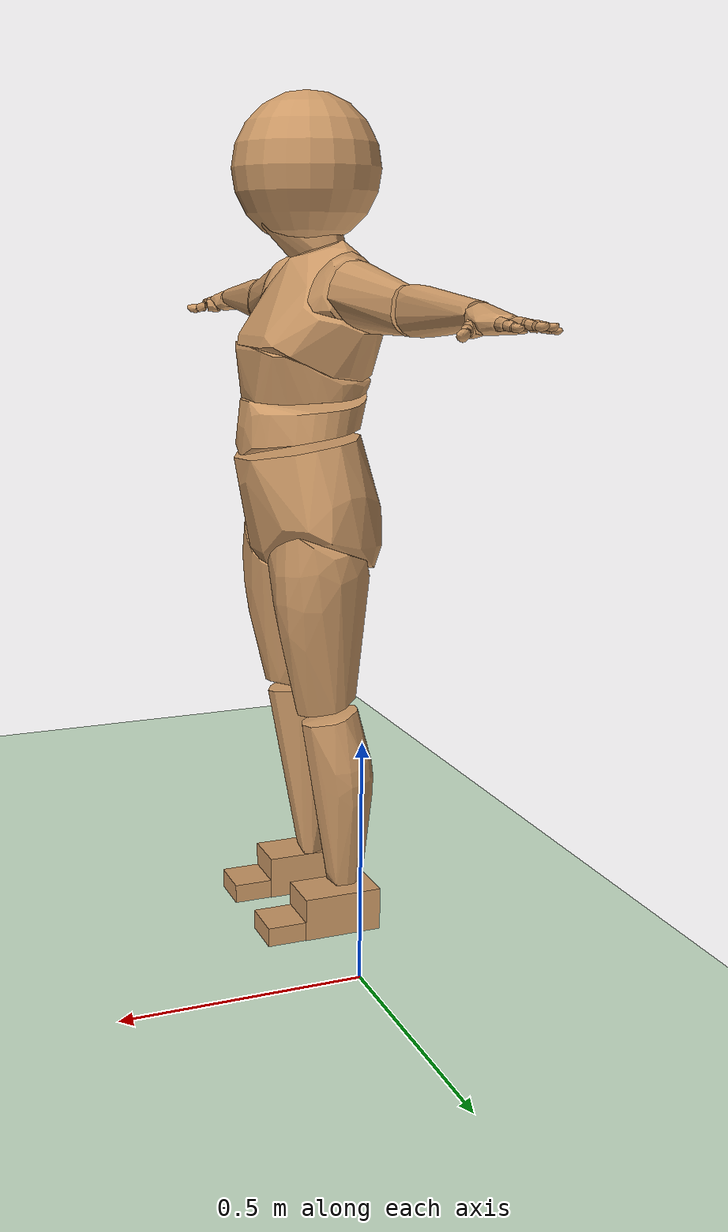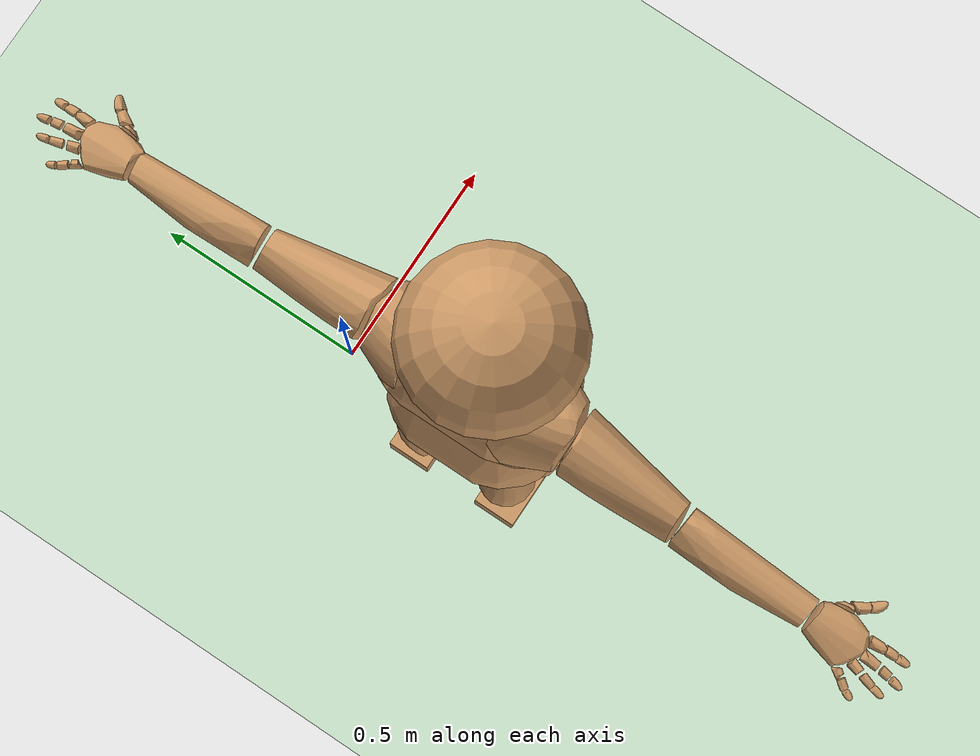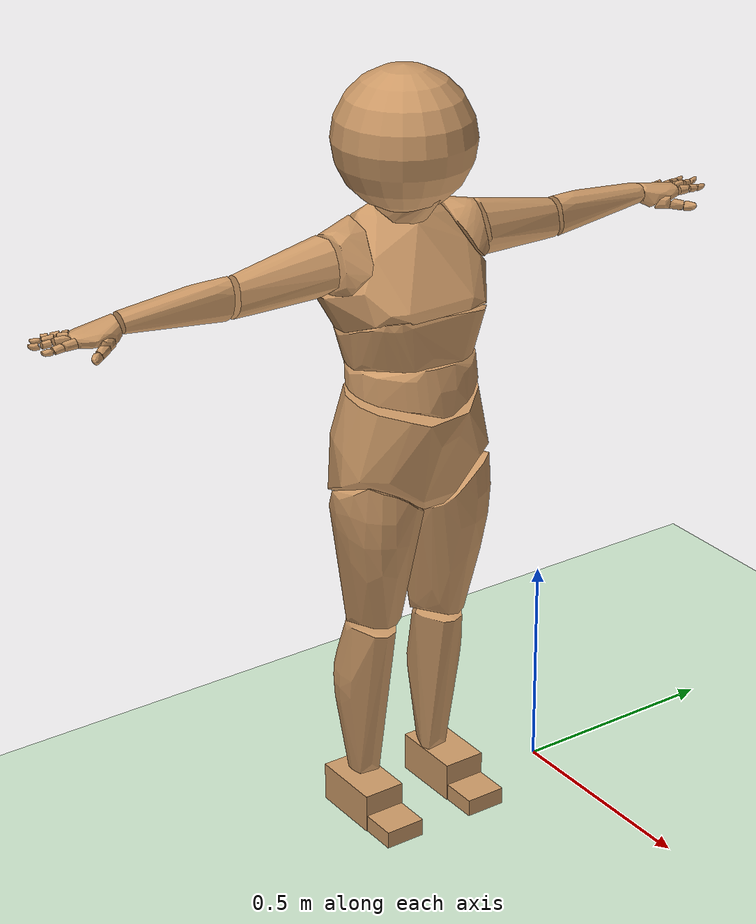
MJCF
<mujoco model="humanoid">
  <compiler coordinate="local" angle="radian" balanceinertia="true"/>
  <option timestep="0.001" iterations="100" tolerance="1e-8" integrator="implicitfast"/>
  <default>
    <motor ctrlrange="-1 1" ctrllimited="true"/>
    <joint limited="true" solimplimit="0 .99 .01"/>
    <geom condim="3" friction="1 0.05 0.05" solimp=".9 .99 .01" solref=".02 1" margin="0.004" contype="1" conaffinity="1" rgba="0.8 0.6 .4 1"/>
  </default>
  <asset>
    <texture type="skybox" builtin="gradient" rgb1=".4 .5 .6" rgb2="0 0 0" width="100" height="100"/>
    <texture builtin="flat" height="1278" mark="cross" markrgb="1 1 1" name="texgeom" random="0.01" rgb1="0.8 0.6 0.4" rgb2="0.8 0.6 0.4" type="cube" width="127"/>
    <texture name="texplane" type="2d" builtin="checker" rgb1=".2 .3 .4" rgb2=".1 0.15 0.2" width="100" height="100"/><material name="MatPlane" reflectance="0.5" texture="texplane" texrepeat="1 1" texuniform="true"/><material name="geom" texture="texgeom" texuniform="true"/>
    <mesh file="725669fe-0b05-464b-a3ef-25dd03fd9762/geom/Pelvis.stl" name="Pelvis_mesh"/>
    <mesh file="725669fe-0b05-464b-a3ef-25dd03fd9762/geom/L_Hip.stl" name="L_Hip_mesh"/>
    <mesh file="725669fe-0b05-464b-a3ef-25dd03fd9762/geom/R_Hip.stl" name="R_Hip_mesh"/>
    <mesh file="725669fe-0b05-464b-a3ef-25dd03fd9762/geom/Torso.stl" name="Torso_mesh"/>
    <mesh file="725669fe-0b05-464b-a3ef-25dd03fd9762/geom/L_Knee.stl" name="L_Knee_mesh"/>
    <mesh file="725669fe-0b05-464b-a3ef-25dd03fd9762/geom/R_Knee.stl" name="R_Knee_mesh"/>
    <mesh file="725669fe-0b05-464b-a3ef-25dd03fd9762/geom/Spine.stl" name="Spine_mesh"/>
    <mesh file="725669fe-0b05-464b-a3ef-25dd03fd9762/geom/L_Ankle.stl" name="L_Ankle_mesh"/>
    <mesh file="725669fe-0b05-464b-a3ef-25dd03fd9762/geom/R_Ankle.stl" name="R_Ankle_mesh"/>
    <mesh file="725669fe-0b05-464b-a3ef-25dd03fd9762/geom/Chest.stl" name="Chest_mesh"/>
    <mesh file="725669fe-0b05-464b-a3ef-25dd03fd9762/geom/L_Toe.stl" name="L_Toe_mesh"/>
    <mesh file="725669fe-0b05-464b-a3ef-25dd03fd9762/geom/R_Toe.stl" name="R_Toe_mesh"/>
    <mesh file="725669fe-0b05-464b-a3ef-25dd03fd9762/geom/Neck.stl" name="Neck_mesh"/>
    <mesh file="725669fe-0b05-464b-a3ef-25dd03fd9762/geom/L_Thorax.stl" name="L_Thorax_mesh"/>
    <mesh file="725669fe-0b05-464b-a3ef-25dd03fd9762/geom/R_Thorax.stl" name="R_Thorax_mesh"/>
    <mesh file="725669fe-0b05-464b-a3ef-25dd03fd9762/geom/L_Shoulder.stl" name="L_Shoulder_mesh"/>
    <mesh file="725669fe-0b05-464b-a3ef-25dd03fd9762/geom/R_Shoulder.stl" name="R_Shoulder_mesh"/>
    <mesh file="725669fe-0b05-464b-a3ef-25dd03fd9762/geom/L_Elbow.stl" name="L_Elbow_mesh"/>
    <mesh file="725669fe-0b05-464b-a3ef-25dd03fd9762/geom/R_Elbow.stl" name="R_Elbow_mesh"/>
    <mesh file="725669fe-0b05-464b-a3ef-25dd03fd9762/geom/L_Wrist.stl" name="L_Wrist_mesh"/>
    <mesh file="725669fe-0b05-464b-a3ef-25dd03fd9762/geom/R_Wrist.stl" name="R_Wrist_mesh"/>
    <mesh file="725669fe-0b05-464b-a3ef-25dd03fd9762/geom/L_Index1.stl" name="L_Index1_mesh"/>
    <mesh file="725669fe-0b05-464b-a3ef-25dd03fd9762/geom/L_Index2.stl" name="L_Index2_mesh"/>
    <mesh file="725669fe-0b05-464b-a3ef-25dd03fd9762/geom/L_Index3.stl" name="L_Index3_mesh"/>
    <mesh file="725669fe-0b05-464b-a3ef-25dd03fd9762/geom/L_Middle1.stl" name="L_Middle1_mesh"/>
    <mesh file="725669fe-0b05-464b-a3ef-25dd03fd9762/geom/L_Middle2.stl" name="L_Middle2_mesh"/>
    <mesh file="725669fe-0b05-464b-a3ef-25dd03fd9762/geom/L_Middle3.stl" name="L_Middle3_mesh"/>
    <mesh file="725669fe-0b05-464b-a3ef-25dd03fd9762/geom/L_Pinky1.stl" name="L_Pinky1_mesh"/>
    <mesh file="725669fe-0b05-464b-a3ef-25dd03fd9762/geom/L_Pinky2.stl" name="L_Pinky2_mesh"/>
    <mesh file="725669fe-0b05-464b-a3ef-25dd03fd9762/geom/L_Pinky3.stl" name="L_Pinky3_mesh"/>
    <mesh file="725669fe-0b05-464b-a3ef-25dd03fd9762/geom/L_Ring1.stl" name="L_Ring1_mesh"/>
    <mesh file="725669fe-0b05-464b-a3ef-25dd03fd9762/geom/L_Ring2.stl" name="L_Ring2_mesh"/>
    <mesh file="725669fe-0b05-464b-a3ef-25dd03fd9762/geom/L_Ring3.stl" name="L_Ring3_mesh"/>
    <mesh file="725669fe-0b05-464b-a3ef-25dd03fd9762/geom/L_Thumb1.stl" name="L_Thumb1_mesh"/>
    <mesh file="725669fe-0b05-464b-a3ef-25dd03fd9762/geom/L_Thumb2.stl" name="L_Thumb2_mesh"/>
    <mesh file="725669fe-0b05-464b-a3ef-25dd03fd9762/geom/L_Thumb3.stl" name="L_Thumb3_mesh"/>
    <mesh file="725669fe-0b05-464b-a3ef-25dd03fd9762/geom/R_Index1.stl" name="R_Index1_mesh"/>
    <mesh file="725669fe-0b05-464b-a3ef-25dd03fd9762/geom/R_Index2.stl" name="R_Index2_mesh"/>
    <mesh file="725669fe-0b05-464b-a3ef-25dd03fd9762/geom/R_Index3.stl" name="R_Index3_mesh"/>
    <mesh file="725669fe-0b05-464b-a3ef-25dd03fd9762/geom/R_Middle1.stl" name="R_Middle1_mesh"/>
    <mesh file="725669fe-0b05-464b-a3ef-25dd03fd9762/geom/R_Middle2.stl" name="R_Middle2_mesh"/>
    <mesh file="725669fe-0b05-464b-a3ef-25dd03fd9762/geom/R_Middle3.stl" name="R_Middle3_mesh"/>
    <mesh file="725669fe-0b05-464b-a3ef-25dd03fd9762/geom/R_Pinky1.stl" name="R_Pinky1_mesh"/>
    <mesh file="725669fe-0b05-464b-a3ef-25dd03fd9762/geom/R_Pinky2.stl" name="R_Pinky2_mesh"/>
    <mesh file="725669fe-0b05-464b-a3ef-25dd03fd9762/geom/R_Pinky3.stl" name="R_Pinky3_mesh"/>
    <mesh file="725669fe-0b05-464b-a3ef-25dd03fd9762/geom/R_Ring1.stl" name="R_Ring1_mesh"/>
    <mesh file="725669fe-0b05-464b-a3ef-25dd03fd9762/geom/R_Ring2.stl" name="R_Ring2_mesh"/>
    <mesh file="725669fe-0b05-464b-a3ef-25dd03fd9762/geom/R_Ring3.stl" name="R_Ring3_mesh"/>
    <mesh file="725669fe-0b05-464b-a3ef-25dd03fd9762/geom/R_Thumb1.stl" name="R_Thumb1_mesh"/>
    <mesh file="725669fe-0b05-464b-a3ef-25dd03fd9762/geom/R_Thumb2.stl" name="R_Thumb2_mesh"/>
    <mesh file="725669fe-0b05-464b-a3ef-25dd03fd9762/geom/R_Thumb3.stl" name="R_Thumb3_mesh"/>
  </asset>
  <worldbody>
    <light name="tracking_light" pos="0 0 7" dir="0 0 -1" directional="true" cutoff="100" exponent="1" diffuse="1 1 1" specular="0.1 0.1 0.1" mode="trackcom"/><camera name="back" pos="0 3 2.4" xyaxes="-1 0 0 0 -1 2" mode="trackcom"/><camera name="side" pos="-3 0 2.4" xyaxes="0 -1 0 1 0 2" mode="trackcom"/><camera name="front_side" pos="-2 -2 .8" xyaxes="0.5 -0.5 0 0.1 0.1 1" mode="trackcom"/><geom conaffinity="1" condim="3" name="floor" pos="0 0 0" friction="1 0.05 0.05" solimp=".9 .99 .01" solref=".02 1" rgba="0.8 0.9 0.8 1" size="100 100 .2" type="plane" material="MatPlane"/>
    <body name="Pelvis" pos="0.0031 -0.3514 0.947">
      <freejoint name="Pelvis"/>
      <geom type="mesh" mesh="Pelvis_mesh" density="1000" contype="1" conaffinity="1"/>
      <body name="L_Hip" pos="-0.026 0.0582 -0.0928">
        <joint name="L_Hip_x" type="hinge" pos="0 0 0" axis="1 0 0" actuatorfrcrange="-300 300" stiffness="0" damping="0" armature="0.02" range="-0.5236 1.5708"/>
        <joint name="L_Hip_y" type="hinge" pos="0 0 0" axis="0 1 0" actuatorfrcrange="-300 300" stiffness="0" damping="0" armature="0.02" range="-2.4435 1.0472"/>
        <joint name="L_Hip_z" type="hinge" pos="0 0 0" axis="0 0 1" actuatorfrcrange="-300 300" stiffness="0" damping="0" armature="0.02" range="-0.6109 1.0472"/>
        <geom type="mesh" mesh="L_Hip_mesh" density="1000" contype="1" conaffinity="1"/>
        <body name="L_Knee" pos="-0.0094 0.0547 -0.3788">
          <joint name="L_Knee_x" type="hinge" pos="0 0 0" axis="1 0 0" actuatorfrcrange="-200 200" stiffness="0" damping="0" armature="0.02" range="-0.5236 0.5236"/>
          <joint name="L_Knee_y" type="hinge" pos="0 0 0" axis="0 1 0" actuatorfrcrange="-200 200" stiffness="0" damping="0" armature="0.02" range="0 2.7925"/>
          <joint name="L_Knee_z" type="hinge" pos="0 0 0" axis="0 0 1" actuatorfrcrange="-200 200" stiffness="0" damping="0" armature="0.02" range="-0.5236 0.5236"/>
          <geom type="mesh" mesh="L_Knee_mesh" density="1000" contype="1" conaffinity="1"/>
          <body name="L_Ankle" pos="-0.0319 -0.0435 -0.4031">
            <joint name="L_Ankle_x" type="hinge" pos="0 0 0" axis="1 0 0" actuatorfrcrange="-100 100" stiffness="0" damping="0" armature="0.02" range="-0.5236 0.5236"/>
            <joint name="L_Ankle_y" type="hinge" pos="0 0 0" axis="0 1 0" actuatorfrcrange="-100 100" stiffness="0" damping="0" armature="0.02" range="-0.9599 0.9599"/>
            <joint name="L_Ankle_z" type="hinge" pos="0 0 0" axis="0 0 1" actuatorfrcrange="-100 100" stiffness="0" damping="0" armature="0.02" range="-0.6981 0.6981"/>
            <geom density="445.8198" type="box" pos="0.0232 0.0407 -0.0287" size="0.0857 0.0498 0.0463" quat="1.0000 0.0000 0.0000 0.0000"/>
            <body name="L_Toe" pos="0.1182 0.0473 -0.058">
              <joint name="L_Toe_x" type="hinge" pos="0 0 0" axis="1 0 0" actuatorfrcrange="-75 75" stiffness="0" damping="0" armature="0.02" range="-0.5236 0.5236"/>
              <joint name="L_Toe_y" type="hinge" pos="0 0 0" axis="0 1 0" actuatorfrcrange="-75 75" stiffness="0" damping="0" armature="0.02" range="-1.0472 1.0472"/>
              <joint name="L_Toe_z" type="hinge" pos="0 0 0" axis="0 0 1" actuatorfrcrange="-75 75" stiffness="0" damping="0" armature="0.02" range="-0.5236 0.5236"/>
              <geom density="421.76654" type="box" pos="0.0256 -0.0065 0.0034" size="0.0495 0.0478 0.0205" quat="1.0000 0.0000 0.0000 0.0000"/>
            </body>
          </body>
        </body>
      </body>
      <body name="R_Hip" pos="-0.0213 -0.0633 -0.1039">
        <joint name="R_Hip_x" type="hinge" pos="0 0 0" axis="1 0 0" actuatorfrcrange="-300 300" stiffness="0" damping="0" armature="0.02" range="-1.5708 0.5236"/>
        <joint name="R_Hip_y" type="hinge" pos="0 0 0" axis="0 1 0" actuatorfrcrange="-300 300" stiffness="0" damping="0" armature="0.02" range="-2.4435 1.0472"/>
        <joint name="R_Hip_z" type="hinge" pos="0 0 0" axis="0 0 1" actuatorfrcrange="-300 300" stiffness="0" damping="0" armature="0.02" range="-1.0472 0.6109"/>
        <geom type="mesh" mesh="R_Hip_mesh" density="1000" contype="1" conaffinity="1"/>
        <body name="R_Knee" pos="-0.0168 -0.0442 -0.3624">
          <joint name="R_Knee_x" type="hinge" pos="0 0 0" axis="1 0 0" actuatorfrcrange="-200 200" stiffness="0" damping="0" armature="0.02" range="-0.5236 0.5236"/>
          <joint name="R_Knee_y" type="hinge" pos="0 0 0" axis="0 1 0" actuatorfrcrange="-200 200" stiffness="0" damping="0" armature="0.02" range="0 2.7925"/>
          <joint name="R_Knee_z" type="hinge" pos="0 0 0" axis="0 0 1" actuatorfrcrange="-200 200" stiffness="0" damping="0" armature="0.02" range="-0.5236 0.5236"/>
          <geom type="mesh" mesh="R_Knee_mesh" density="1000" contype="1" conaffinity="1"/>
          <body name="R_Ankle" pos="-0.0202 0.0154 -0.4107">
            <joint name="R_Ankle_x" type="hinge" pos="0 0 0" axis="1 0 0" actuatorfrcrange="-100 100" stiffness="0" damping="0" armature="0.02" range="-0.5236 0.5236"/>
            <joint name="R_Ankle_y" type="hinge" pos="0 0 0" axis="0 1 0" actuatorfrcrange="-100 100" stiffness="0" damping="0" armature="0.02" range="-0.9599 0.9599"/>
            <joint name="R_Ankle_z" type="hinge" pos="0 0 0" axis="0 0 1" actuatorfrcrange="-100 100" stiffness="0" damping="0" armature="0.02" range="-0.6981 0.6981"/>
            <geom density="445.80768" type="box" pos="0.0142 -0.0243 -0.0263" size="0.0857 0.0498 0.0464" quat="1.0000 0.0000 0.0000 0.0000"/>
            <body name="R_Toe" pos="0.119 -0.0388 -0.0583">
              <joint name="R_Toe_x" type="hinge" pos="0 0 0" axis="1 0 0" actuatorfrcrange="-75 75" stiffness="0" damping="0" armature="0.02" range="-0.5236 0.5236"/>
              <joint name="R_Toe_y" type="hinge" pos="0 0 0" axis="0 1 0" actuatorfrcrange="-75 75" stiffness="0" damping="0" armature="0.02" range="-1.0472 1.0472"/>
              <joint name="R_Toe_z" type="hinge" pos="0 0 0" axis="0 0 1" actuatorfrcrange="-75 75" stiffness="0" damping="0" armature="0.02" range="-0.5236 0.5236"/>
              <geom density="421.76465" type="box" pos="0.0158 0.0145 0.0062" size="0.0495 0.0478 0.0205" quat="1.0000 0.0000 0.0000 0.0000"/>
            </body>
          </body>
        </body>
      </body>
      <body name="Torso" pos="-0.0276 -0.0028 0.1099">
        <joint name="Torso_x" type="hinge" pos="0 0 0" axis="1 0 0" actuatorfrcrange="-300 300" stiffness="0" damping="0" armature="0.02" range="-1.0472 1.0472"/>
        <joint name="Torso_y" type="hinge" pos="0 0 0" axis="0 1 0" actuatorfrcrange="-300 300" stiffness="0" damping="0" armature="0.02" range="-1.0472 1.5708"/>
        <joint name="Torso_z" type="hinge" pos="0 0 0" axis="0 0 1" actuatorfrcrange="-300 300" stiffness="0" damping="0" armature="0.02" range="-0.8727 0.8727"/>
        <geom type="mesh" mesh="Torso_mesh" density="1000" contype="1" conaffinity="1"/>
        <body name="Spine" pos="-0.0059 0.0094 0.1319">
          <joint name="Spine_x" type="hinge" pos="0 0 0" axis="1 0 0" actuatorfrcrange="-200 200" stiffness="0" damping="0" armature="0.02" range="-1.0472 1.0472"/>
          <joint name="Spine_y" type="hinge" pos="0 0 0" axis="0 1 0" actuatorfrcrange="-200 200" stiffness="0" damping="0" armature="0.02" range="-1.0472 1.5708"/>
          <joint name="Spine_z" type="hinge" pos="0 0 0" axis="0 0 1" actuatorfrcrange="-200 200" stiffness="0" damping="0" armature="0.02" range="-0.8727 0.8727"/>
          <geom type="mesh" mesh="Spine_mesh" density="1000" contype="1" conaffinity="1"/>
          <body name="Chest" pos="0.0284 -0.0113 0.0522">
            <joint name="Chest_x" type="hinge" pos="0 0 0" axis="1 0 0" actuatorfrcrange="-150 150" stiffness="0" damping="0" armature="0.02" range="-1.0472 1.0472"/>
            <joint name="Chest_y" type="hinge" pos="0 0 0" axis="0 1 0" actuatorfrcrange="-150 150" stiffness="0" damping="0" armature="0.02" range="-1.0472 1.5708"/>
            <joint name="Chest_z" type="hinge" pos="0 0 0" axis="0 0 1" actuatorfrcrange="-150 150" stiffness="0" damping="0" armature="0.02" range="-0.8727 0.8727"/>
            <geom type="mesh" mesh="Chest_mesh" density="1000" contype="1" conaffinity="1"/>
            <body name="Neck" pos="-0.0316 -0.0122 0.1652">
              <joint name="Neck_x" type="hinge" pos="0 0 0" axis="1 0 0" actuatorfrcrange="-75 75" stiffness="0" damping="0" armature="0.02" range="-0.8727 0.8727"/>
              <joint name="Neck_y" type="hinge" pos="0 0 0" axis="0 1 0" actuatorfrcrange="-75 75" stiffness="0" damping="0" armature="0.02" range="-0.6981 1.0472"/>
              <joint name="Neck_z" type="hinge" pos="0 0 0" axis="0 0 1" actuatorfrcrange="-75 75" stiffness="0" damping="0" armature="0.02" range="-0.7854 0.7854"/>
              <geom type="mesh" mesh="Neck_mesh" density="1000" contype="1" conaffinity="1"/>
              <body name="Head" pos="0.0207 0.0248 0.1605">
                <joint name="Head_x" type="hinge" pos="0 0 0" axis="1 0 0" actuatorfrcrange="-25 25" stiffness="0" damping="0" armature="0.02" range="-0.8727 0.8727"/>
                <joint name="Head_y" type="hinge" pos="0 0 0" axis="0 1 0" actuatorfrcrange="-25 25" stiffness="0" damping="0" armature="0.02" range="-0.6981 1.0472"/>
                <joint name="Head_z" type="hinge" pos="0 0 0" axis="0 0 1" actuatorfrcrange="-25 25" stiffness="0" damping="0" armature="0.02" range="-0.7854 0.7854"/>
                <geom type="sphere" density="1000" size="0.155" pos="-0.0056 -0.0202 0.0471" contype="1" conaffinity="1"/>
              </body>
            </body>
            <body name="L_Thorax" pos="-0.0072 0.0464 0.0849">
              <joint name="L_Thorax_x" type="hinge" pos="0 0 0" axis="1 0 0" actuatorfrcrange="-200 200" stiffness="0" damping="0" armature="0.02" range="-0.6981 0.5236"/>
              <joint name="L_Thorax_y" type="hinge" pos="0 0 0" axis="0 1 0" actuatorfrcrange="-200 200" stiffness="0" damping="0" armature="0.02" range="-0.5236 0.5236"/>
              <joint name="L_Thorax_z" type="hinge" pos="0 0 0" axis="0 0 1" actuatorfrcrange="-200 200" stiffness="0" damping="0" armature="0.02" range="-0.5236 0.5236"/>
              <geom type="mesh" mesh="L_Thorax_mesh" density="1000" contype="1" conaffinity="1"/>
              <body name="L_Shoulder" pos="-0.0155 0.1192 0.0577">
                <joint name="L_Shoulder_x" type="hinge" pos="0 0 0" axis="1 0 0" actuatorfrcrange="-150 150" stiffness="0" damping="0" armature="0.02" range="-2.3562 1.5708"/>
                <joint name="L_Shoulder_y" type="hinge" pos="0 0 0" axis="0 1 0" actuatorfrcrange="-150 150" stiffness="0" damping="0" armature="0.02" range="-1.5708 1.5708"/>
                <joint name="L_Shoulder_z" type="hinge" pos="0 0 0" axis="0 0 1" actuatorfrcrange="-150 150" stiffness="0" damping="0" armature="0.02" range="-2.7925 1.0472"/>
                <geom type="mesh" mesh="L_Shoulder_mesh" density="1000" contype="1" conaffinity="1"/>
                <body name="L_Elbow" pos="-0.0425 0.2541 -0.0722">
                  <joint name="L_Elbow_x" type="hinge" pos="0 0 0" axis="1 0 0" actuatorfrcrange="-100 100" stiffness="0" damping="0" armature="0.02" range="-0.5236 0.5236"/>
                  <joint name="L_Elbow_y" type="hinge" pos="0 0 0" axis="0 1 0" actuatorfrcrange="-100 100" stiffness="0" damping="0" armature="0.02" range="-0.5236 0.5236"/>
                  <joint name="L_Elbow_z" type="hinge" pos="0 0 0" axis="0 0 1" actuatorfrcrange="-100 100" stiffness="0" damping="0" armature="0.02" range="-2.7925 0"/>
                  <geom type="mesh" mesh="L_Elbow_mesh" density="1000" contype="1" conaffinity="1"/>
                  <body name="L_Wrist" pos="-0.0025 0.252 0.0232">
                    <joint name="L_Wrist_x" type="hinge" pos="0 0 0" axis="1 0 0" actuatorfrcrange="-75 75" stiffness="0" damping="0" armature="0.02" range="-1.5708 1.5708"/>
                    <joint name="L_Wrist_y" type="hinge" pos="0 0 0" axis="0 1 0" actuatorfrcrange="-75 75" stiffness="0" damping="0" armature="0.02" range="-1.5708 1.5708"/>
                    <joint name="L_Wrist_z" type="hinge" pos="0 0 0" axis="0 0 1" actuatorfrcrange="-75 75" stiffness="0" damping="0" armature="0.02" range="-1.0472 1.0472"/>
                    <geom type="mesh" mesh="L_Wrist_mesh" density="1000" contype="1" conaffinity="1"/>
                    <body name="L_Index1" pos="0.0194 0.1019 -0.0087">
                      <joint name="L_Index1_x" type="hinge" pos="0 0 0" axis="1 0 0" actuatorfrcrange="0 0" stiffness="0" damping="40" armature="1" range="-1e-6 1e-6"/>
                      <joint name="L_Index1_y" type="hinge" pos="0 0 0" axis="0 1 0" actuatorfrcrange="0 0" stiffness="0" damping="40" armature="1" range="-1e-6 1e-6"/>
                      <joint name="L_Index1_z" type="hinge" pos="0 0 0" axis="0 0 1" actuatorfrcrange="0 0" stiffness="0" damping="40" armature="1" range="-1e-6 1e-6"/>
                      <geom type="mesh" mesh="L_Index1_mesh" density="1000" contype="1" conaffinity="1"/>
                      <body name="L_Index2" pos="0.003 0.0319 0.0022">
                        <joint name="L_Index2_x" type="hinge" pos="0 0 0" axis="1 0 0" actuatorfrcrange="0 0" stiffness="0" damping="40" armature="1" range="-1e-6 1e-6"/>
                        <joint name="L_Index2_y" type="hinge" pos="0 0 0" axis="0 1 0" actuatorfrcrange="0 0" stiffness="0" damping="40" armature="1" range="-1e-6 1e-6"/>
                        <joint name="L_Index2_z" type="hinge" pos="0 0 0" axis="0 0 1" actuatorfrcrange="0 0" stiffness="0" damping="40" armature="1" range="-1e-6 1e-6"/>
                        <geom type="mesh" mesh="L_Index2_mesh" density="1000" contype="1" conaffinity="1"/>
                        <body name="L_Index3" pos="0.0001 0.0225 -0.0024">
                          <joint name="L_Index3_x" type="hinge" pos="0 0 0" axis="1 0 0" actuatorfrcrange="0 0" stiffness="0" damping="40" armature="1" range="-1e-6 1e-6"/>
                          <joint name="L_Index3_y" type="hinge" pos="0 0 0" axis="0 1 0" actuatorfrcrange="0 0" stiffness="0" damping="40" armature="1" range="-1e-6 1e-6"/>
                          <joint name="L_Index3_z" type="hinge" pos="0 0 0" axis="0 0 1" actuatorfrcrange="0 0" stiffness="0" damping="40" armature="1" range="-1e-6 1e-6"/>
                          <geom type="mesh" mesh="L_Index3_mesh" density="1000" contype="1" conaffinity="1"/>
                        </body>
                      </body>
                    </body>
                    <body name="L_Middle1" pos="-0.004 0.1094 -0.0063">
                      <joint name="L_Middle1_x" type="hinge" pos="0 0 0" axis="1 0 0" actuatorfrcrange="0 0" stiffness="0" damping="40" armature="1" range="-1e-6 1e-6"/>
                      <joint name="L_Middle1_y" type="hinge" pos="0 0 0" axis="0 1 0" actuatorfrcrange="0 0" stiffness="0" damping="40" armature="1" range="-1e-6 1e-6"/>
                      <joint name="L_Middle1_z" type="hinge" pos="0 0 0" axis="0 0 1" actuatorfrcrange="0 0" stiffness="0" damping="40" armature="1" range="-1e-6 1e-6"/>
                      <geom type="mesh" mesh="L_Middle1_mesh" density="1000" contype="1" conaffinity="1"/>
                      <body name="L_Middle2" pos="-0.004 0.0306 0.0008">
                        <joint name="L_Middle2_x" type="hinge" pos="0 0 0" axis="1 0 0" actuatorfrcrange="0 0" stiffness="0" damping="40" armature="1" range="-1e-6 1e-6"/>
                        <joint name="L_Middle2_y" type="hinge" pos="0 0 0" axis="0 1 0" actuatorfrcrange="0 0" stiffness="0" damping="40" armature="1" range="-1e-6 1e-6"/>
                        <joint name="L_Middle2_z" type="hinge" pos="0 0 0" axis="0 0 1" actuatorfrcrange="0 0" stiffness="0" damping="40" armature="1" range="-1e-6 1e-6"/>
                        <geom type="mesh" mesh="L_Middle2_mesh" density="1000" contype="1" conaffinity="1"/>
                        <body name="L_Middle3" pos="-0.0041 0.0235 -0.002">
                          <joint name="L_Middle3_x" type="hinge" pos="0 0 0" axis="1 0 0" actuatorfrcrange="0 0" stiffness="0" damping="40" armature="1" range="-1e-6 1e-6"/>
                          <joint name="L_Middle3_y" type="hinge" pos="0 0 0" axis="0 1 0" actuatorfrcrange="0 0" stiffness="0" damping="40" armature="1" range="-1e-6 1e-6"/>
                          <joint name="L_Middle3_z" type="hinge" pos="0 0 0" axis="0 0 1" actuatorfrcrange="0 0" stiffness="0" damping="40" armature="1" range="-1e-6 1e-6"/>
                          <geom type="mesh" mesh="L_Middle3_mesh" density="1000" contype="1" conaffinity="1"/>
                        </body>
                      </body>
                    </body>
                    <body name="L_Pinky1" pos="-0.0437 0.084 -0.0145">
                      <joint name="L_Pinky1_x" type="hinge" pos="0 0 0" axis="1 0 0" actuatorfrcrange="0 0" stiffness="0" damping="40" armature="1" range="-1e-6 1e-6"/>
                      <joint name="L_Pinky1_y" type="hinge" pos="0 0 0" axis="0 1 0" actuatorfrcrange="0 0" stiffness="0" damping="40" armature="1" range="-1e-6 1e-6"/>
                      <joint name="L_Pinky1_z" type="hinge" pos="0 0 0" axis="0 0 1" actuatorfrcrange="0 0" stiffness="0" damping="40" armature="1" range="-1e-6 1e-6"/>
                      <geom type="mesh" mesh="L_Pinky1_mesh" density="1000" contype="1" conaffinity="1"/>
                      <body name="L_Pinky2" pos="-0.012 0.0155 -0.0011">
                        <joint name="L_Pinky2_x" type="hinge" pos="0 0 0" axis="1 0 0" actuatorfrcrange="0 0" stiffness="0" damping="40" armature="1" range="-1e-6 1e-6"/>
                        <joint name="L_Pinky2_y" type="hinge" pos="0 0 0" axis="0 1 0" actuatorfrcrange="0 0" stiffness="0" damping="40" armature="1" range="-1e-6 1e-6"/>
                        <joint name="L_Pinky2_z" type="hinge" pos="0 0 0" axis="0 0 1" actuatorfrcrange="0 0" stiffness="0" damping="40" armature="1" range="-1e-6 1e-6"/>
                        <geom type="mesh" mesh="L_Pinky2_mesh" density="1000" contype="1" conaffinity="1"/>
                        <body name="L_Pinky3" pos="-0.0112 0.0155 -0.0017">
                          <joint name="L_Pinky3_x" type="hinge" pos="0 0 0" axis="1 0 0" actuatorfrcrange="0 0" stiffness="0" damping="40" armature="1" range="-1e-6 1e-6"/>
                          <joint name="L_Pinky3_y" type="hinge" pos="0 0 0" axis="0 1 0" actuatorfrcrange="0 0" stiffness="0" damping="40" armature="1" range="-1e-6 1e-6"/>
                          <joint name="L_Pinky3_z" type="hinge" pos="0 0 0" axis="0 0 1" actuatorfrcrange="0 0" stiffness="0" damping="40" armature="1" range="-1e-6 1e-6"/>
                          <geom type="mesh" mesh="L_Pinky3_mesh" density="1000" contype="1" conaffinity="1"/>
                        </body>
                      </body>
                    </body>
                    <body name="L_Ring1" pos="-0.0273 0.0974 -0.0093">
                      <joint name="L_Ring1_x" type="hinge" pos="0 0 0" axis="1 0 0" actuatorfrcrange="0 0" stiffness="0" damping="40" armature="1" range="-1e-6 1e-6"/>
                      <joint name="L_Ring1_y" type="hinge" pos="0 0 0" axis="0 1 0" actuatorfrcrange="0 0" stiffness="0" damping="40" armature="1" range="-1e-6 1e-6"/>
                      <joint name="L_Ring1_z" type="hinge" pos="0 0 0" axis="0 0 1" actuatorfrcrange="0 0" stiffness="0" damping="40" armature="1" range="-1e-6 1e-6"/>
                      <geom type="mesh" mesh="L_Ring1_mesh" density="1000" contype="1" conaffinity="1"/>
                      <body name="L_Ring2" pos="-0.0053 0.028 0.0015">
                        <joint name="L_Ring2_x" type="hinge" pos="0 0 0" axis="1 0 0" actuatorfrcrange="0 0" stiffness="0" damping="40" armature="1" range="-1e-6 1e-6"/>
                        <joint name="L_Ring2_y" type="hinge" pos="0 0 0" axis="0 1 0" actuatorfrcrange="0 0" stiffness="0" damping="40" armature="1" range="-1e-6 1e-6"/>
                        <joint name="L_Ring2_z" type="hinge" pos="0 0 0" axis="0 0 1" actuatorfrcrange="0 0" stiffness="0" damping="40" armature="1" range="-1e-6 1e-6"/>
                        <geom type="mesh" mesh="L_Ring2_mesh" density="1000" contype="1" conaffinity="1"/>
                        <body name="L_Ring3" pos="-0.0071 0.0228 -0.0015">
                          <joint name="L_Ring3_x" type="hinge" pos="0 0 0" axis="1 0 0" actuatorfrcrange="0 0" stiffness="0" damping="40" armature="1" range="-1e-6 1e-6"/>
                          <joint name="L_Ring3_y" type="hinge" pos="0 0 0" axis="0 1 0" actuatorfrcrange="0 0" stiffness="0" damping="40" armature="1" range="-1e-6 1e-6"/>
                          <joint name="L_Ring3_z" type="hinge" pos="0 0 0" axis="0 0 1" actuatorfrcrange="0 0" stiffness="0" damping="40" armature="1" range="-1e-6 1e-6"/>
                          <geom type="mesh" mesh="L_Ring3_mesh" density="1000" contype="1" conaffinity="1"/>
                        </body>
                      </body>
                    </body>
                    <body name="L_Thumb1" pos="0.0256 0.0406 -0.018">
                      <joint name="L_Thumb1_x" type="hinge" pos="0 0 0" axis="1 0 0" actuatorfrcrange="0 0" stiffness="0" damping="40" armature="1" range="-1e-6 1e-6"/>
                      <joint name="L_Thumb1_y" type="hinge" pos="0 0 0" axis="0 1 0" actuatorfrcrange="0 0" stiffness="0" damping="40" armature="1" range="-1e-6 1e-6"/>
                      <joint name="L_Thumb1_z" type="hinge" pos="0 0 0" axis="0 0 1" actuatorfrcrange="0 0" stiffness="0" damping="40" armature="1" range="-1e-6 1e-6"/>
                      <geom type="mesh" mesh="L_Thumb1_mesh" density="1000" contype="1" conaffinity="1"/>
                      <body name="L_Thumb2" pos="0.025 0.017 0.001">
                        <joint name="L_Thumb2_x" type="hinge" pos="0 0 0" axis="1 0 0" actuatorfrcrange="0 0" stiffness="0" damping="40" armature="1" range="-1e-6 1e-6"/>
                        <joint name="L_Thumb2_y" type="hinge" pos="0 0 0" axis="0 1 0" actuatorfrcrange="0 0" stiffness="0" damping="40" armature="1" range="-1e-6 1e-6"/>
                        <joint name="L_Thumb2_z" type="hinge" pos="0 0 0" axis="0 0 1" actuatorfrcrange="0 0" stiffness="0" damping="40" armature="1" range="-1e-6 1e-6"/>
                        <geom type="mesh" mesh="L_Thumb2_mesh" density="1000" contype="1" conaffinity="1"/>
                        <body name="L_Thumb3" pos="0.0155 0.0205 -0.0052">
                          <joint name="L_Thumb3_x" type="hinge" pos="0 0 0" axis="1 0 0" actuatorfrcrange="0 0" stiffness="0" damping="40" armature="1" range="-1e-6 1e-6"/>
                          <joint name="L_Thumb3_y" type="hinge" pos="0 0 0" axis="0 1 0" actuatorfrcrange="0 0" stiffness="0" damping="40" armature="1" range="-1e-6 1e-6"/>
                          <joint name="L_Thumb3_z" type="hinge" pos="0 0 0" axis="0 0 1" actuatorfrcrange="0 0" stiffness="0" damping="40" armature="1" range="-1e-6 1e-6"/>
                          <geom type="mesh" mesh="L_Thumb3_mesh" density="1000" contype="1" conaffinity="1"/>
                        </body>
                      </body>
                    </body>
                  </body>
                </body>
              </body>
            </body>
            <body name="R_Thorax" pos="-0.0134 -0.0477 0.0843">
              <joint name="R_Thorax_x" type="hinge" pos="0 0 0" axis="1 0 0" actuatorfrcrange="-200 200" stiffness="0" damping="0" armature="0.02" range="-0.5236 0.6981"/>
              <joint name="R_Thorax_y" type="hinge" pos="0 0 0" axis="0 1 0" actuatorfrcrange="-200 200" stiffness="0" damping="0" armature="0.02" range="-0.5236 0.5236"/>
              <joint name="R_Thorax_z" type="hinge" pos="0 0 0" axis="0 0 1" actuatorfrcrange="-200 200" stiffness="0" damping="0" armature="0.02" range="-0.5236 0.5236"/>
              <geom type="mesh" mesh="R_Thorax_mesh" density="1000" contype="1" conaffinity="1"/>
              <body name="R_Shoulder" pos="-0.0127 -0.1026 0.0535">
                <joint name="R_Shoulder_x" type="hinge" pos="0 0 0" axis="1 0 0" actuatorfrcrange="-150 150" stiffness="0" damping="0" armature="0.02" range="-1.5708 2.3562"/>
                <joint name="R_Shoulder_y" type="hinge" pos="0 0 0" axis="0 1 0" actuatorfrcrange="-150 150" stiffness="0" damping="0" armature="0.02" range="-1.5708 1.5708"/>
                <joint name="R_Shoulder_z" type="hinge" pos="0 0 0" axis="0 0 1" actuatorfrcrange="-150 150" stiffness="0" damping="0" armature="0.02" range="-1.0472 2.7925"/>
                <geom type="mesh" mesh="R_Shoulder_mesh" density="1000" contype="1" conaffinity="1"/>
                <body name="R_Elbow" pos="-0.0265 -0.2711 -0.0365">
                  <joint name="R_Elbow_x" type="hinge" pos="0 0 0" axis="1 0 0" actuatorfrcrange="-100 100" stiffness="0" damping="0" armature="0.02" range="-0.5236 0.5236"/>
                  <joint name="R_Elbow_y" type="hinge" pos="0 0 0" axis="0 1 0" actuatorfrcrange="-100 100" stiffness="0" damping="0" armature="0.02" range="-0.5236 0.5236"/>
                  <joint name="R_Elbow_z" type="hinge" pos="0 0 0" axis="0 0 1" actuatorfrcrange="-100 100" stiffness="0" damping="0" armature="0.02" range="0 2.7925"/>
                  <geom type="mesh" mesh="R_Elbow_mesh" density="1000" contype="1" conaffinity="1"/>
                  <body name="R_Wrist" pos="-0.0153 -0.2493 -0.0045">
                    <joint name="R_Wrist_x" type="hinge" pos="0 0 0" axis="1 0 0" actuatorfrcrange="-75 75" stiffness="0" damping="0" armature="0.02" range="-1.5708 1.5708"/>
                    <joint name="R_Wrist_y" type="hinge" pos="0 0 0" axis="0 1 0" actuatorfrcrange="-75 75" stiffness="0" damping="0" armature="0.02" range="-1.5708 1.5708"/>
                    <joint name="R_Wrist_z" type="hinge" pos="0 0 0" axis="0 0 1" actuatorfrcrange="-75 75" stiffness="0" damping="0" armature="0.02" range="-1.0472 1.0472"/>
                    <geom type="mesh" mesh="R_Wrist_mesh" density="1000" contype="1" conaffinity="1"/>
                    <body name="R_Index1" pos="0.0196 -0.0999 -0.0118">
                      <joint name="R_Index1_x" type="hinge" pos="0 0 0" axis="1 0 0" actuatorfrcrange="0 0" stiffness="0" damping="40" armature="1" range="-1e-6 1e-6"/>
                      <joint name="R_Index1_y" type="hinge" pos="0 0 0" axis="0 1 0" actuatorfrcrange="0 0" stiffness="0" damping="40" armature="1" range="-1e-6 1e-6"/>
                      <joint name="R_Index1_z" type="hinge" pos="0 0 0" axis="0 0 1" actuatorfrcrange="0 0" stiffness="0" damping="40" armature="1" range="-1e-6 1e-6"/>
                      <geom type="mesh" mesh="R_Index1_mesh" density="1000" contype="1" conaffinity="1"/>
                      <body name="R_Index2" pos="0.003 -0.0319 0.0022">
                        <joint name="R_Index2_x" type="hinge" pos="0 0 0" axis="1 0 0" actuatorfrcrange="0 0" stiffness="0" damping="40" armature="1" range="-1e-6 1e-6"/>
                        <joint name="R_Index2_y" type="hinge" pos="0 0 0" axis="0 1 0" actuatorfrcrange="0 0" stiffness="0" damping="40" armature="1" range="-1e-6 1e-6"/>
                        <joint name="R_Index2_z" type="hinge" pos="0 0 0" axis="0 0 1" actuatorfrcrange="0 0" stiffness="0" damping="40" armature="1" range="-1e-6 1e-6"/>
                        <geom type="mesh" mesh="R_Index2_mesh" density="1000" contype="1" conaffinity="1"/>
                        <body name="R_Index3" pos="0.0001 -0.0225 -0.0023">
                          <joint name="R_Index3_x" type="hinge" pos="0 0 0" axis="1 0 0" actuatorfrcrange="0 0" stiffness="0" damping="40" armature="1" range="-1e-6 1e-6"/>
                          <joint name="R_Index3_y" type="hinge" pos="0 0 0" axis="0 1 0" actuatorfrcrange="0 0" stiffness="0" damping="40" armature="1" range="-1e-6 1e-6"/>
                          <joint name="R_Index3_z" type="hinge" pos="0 0 0" axis="0 0 1" actuatorfrcrange="0 0" stiffness="0" damping="40" armature="1" range="-1e-6 1e-6"/>
                          <geom type="mesh" mesh="R_Index3_mesh" density="1000" contype="1" conaffinity="1"/>
                        </body>
                      </body>
                    </body>
                    <body name="R_Middle1" pos="-0.0037 -0.1074 -0.0094">
                      <joint name="R_Middle1_x" type="hinge" pos="0 0 0" axis="1 0 0" actuatorfrcrange="0 0" stiffness="0" damping="40" armature="1" range="-1e-6 1e-6"/>
                      <joint name="R_Middle1_y" type="hinge" pos="0 0 0" axis="0 1 0" actuatorfrcrange="0 0" stiffness="0" damping="40" armature="1" range="-1e-6 1e-6"/>
                      <joint name="R_Middle1_z" type="hinge" pos="0 0 0" axis="0 0 1" actuatorfrcrange="0 0" stiffness="0" damping="40" armature="1" range="-1e-6 1e-6"/>
                      <geom type="mesh" mesh="R_Middle1_mesh" density="1000" contype="1" conaffinity="1"/>
                      <body name="R_Middle2" pos="-0.004 -0.0306 0.0008">
                        <joint name="R_Middle2_x" type="hinge" pos="0 0 0" axis="1 0 0" actuatorfrcrange="0 0" stiffness="0" damping="40" armature="1" range="-1e-6 1e-6"/>
                        <joint name="R_Middle2_y" type="hinge" pos="0 0 0" axis="0 1 0" actuatorfrcrange="0 0" stiffness="0" damping="40" armature="1" range="-1e-6 1e-6"/>
                        <joint name="R_Middle2_z" type="hinge" pos="0 0 0" axis="0 0 1" actuatorfrcrange="0 0" stiffness="0" damping="40" armature="1" range="-1e-6 1e-6"/>
                        <geom type="mesh" mesh="R_Middle2_mesh" density="1000" contype="1" conaffinity="1"/>
                        <body name="R_Middle3" pos="-0.0041 -0.0235 -0.002">
                          <joint name="R_Middle3_x" type="hinge" pos="0 0 0" axis="1 0 0" actuatorfrcrange="0 0" stiffness="0" damping="40" armature="1" range="-1e-6 1e-6"/>
                          <joint name="R_Middle3_y" type="hinge" pos="0 0 0" axis="0 1 0" actuatorfrcrange="0 0" stiffness="0" damping="40" armature="1" range="-1e-6 1e-6"/>
                          <joint name="R_Middle3_z" type="hinge" pos="0 0 0" axis="0 0 1" actuatorfrcrange="0 0" stiffness="0" damping="40" armature="1" range="-1e-6 1e-6"/>
                          <geom type="mesh" mesh="R_Middle3_mesh" density="1000" contype="1" conaffinity="1"/>
                        </body>
                      </body>
                    </body>
                    <body name="R_Pinky1" pos="-0.0435 -0.082 -0.0176">
                      <joint name="R_Pinky1_x" type="hinge" pos="0 0 0" axis="1 0 0" actuatorfrcrange="0 0" stiffness="0" damping="40" armature="1" range="-1e-6 1e-6"/>
                      <joint name="R_Pinky1_y" type="hinge" pos="0 0 0" axis="0 1 0" actuatorfrcrange="0 0" stiffness="0" damping="40" armature="1" range="-1e-6 1e-6"/>
                      <joint name="R_Pinky1_z" type="hinge" pos="0 0 0" axis="0 0 1" actuatorfrcrange="0 0" stiffness="0" damping="40" armature="1" range="-1e-6 1e-6"/>
                      <geom type="mesh" mesh="R_Pinky1_mesh" density="1000" contype="1" conaffinity="1"/>
                      <body name="R_Pinky2" pos="-0.012 -0.0155 -0.0011">
                        <joint name="R_Pinky2_x" type="hinge" pos="0 0 0" axis="1 0 0" actuatorfrcrange="0 0" stiffness="0" damping="40" armature="1" range="-1e-6 1e-6"/>
                        <joint name="R_Pinky2_y" type="hinge" pos="0 0 0" axis="0 1 0" actuatorfrcrange="0 0" stiffness="0" damping="40" armature="1" range="-1e-6 1e-6"/>
                        <joint name="R_Pinky2_z" type="hinge" pos="0 0 0" axis="0 0 1" actuatorfrcrange="0 0" stiffness="0" damping="40" armature="1" range="-1e-6 1e-6"/>
                        <geom type="mesh" mesh="R_Pinky2_mesh" density="1000" contype="1" conaffinity="1"/>
                        <body name="R_Pinky3" pos="-0.0112 -0.0155 -0.0017">
                          <joint name="R_Pinky3_x" type="hinge" pos="0 0 0" axis="1 0 0" actuatorfrcrange="0 0" stiffness="0" damping="40" armature="1" range="-1e-6 1e-6"/>
                          <joint name="R_Pinky3_y" type="hinge" pos="0 0 0" axis="0 1 0" actuatorfrcrange="0 0" stiffness="0" damping="40" armature="1" range="-1e-6 1e-6"/>
                          <joint name="R_Pinky3_z" type="hinge" pos="0 0 0" axis="0 0 1" actuatorfrcrange="0 0" stiffness="0" damping="40" armature="1" range="-1e-6 1e-6"/>
                          <geom type="mesh" mesh="R_Pinky3_mesh" density="1000" contype="1" conaffinity="1"/>
                        </body>
                      </body>
                    </body>
                    <body name="R_Ring1" pos="-0.0271 -0.0954 -0.0124">
                      <joint name="R_Ring1_x" type="hinge" pos="0 0 0" axis="1 0 0" actuatorfrcrange="0 0" stiffness="0" damping="40" armature="1" range="-1e-6 1e-6"/>
                      <joint name="R_Ring1_y" type="hinge" pos="0 0 0" axis="0 1 0" actuatorfrcrange="0 0" stiffness="0" damping="40" armature="1" range="-1e-6 1e-6"/>
                      <joint name="R_Ring1_z" type="hinge" pos="0 0 0" axis="0 0 1" actuatorfrcrange="0 0" stiffness="0" damping="40" armature="1" range="-1e-6 1e-6"/>
                      <geom type="mesh" mesh="R_Ring1_mesh" density="1000" contype="1" conaffinity="1"/>
                      <body name="R_Ring2" pos="-0.0053 -0.028 0.0015">
                        <joint name="R_Ring2_x" type="hinge" pos="0 0 0" axis="1 0 0" actuatorfrcrange="0 0" stiffness="0" damping="40" armature="1" range="-1e-6 1e-6"/>
                        <joint name="R_Ring2_y" type="hinge" pos="0 0 0" axis="0 1 0" actuatorfrcrange="0 0" stiffness="0" damping="40" armature="1" range="-1e-6 1e-6"/>
                        <joint name="R_Ring2_z" type="hinge" pos="0 0 0" axis="0 0 1" actuatorfrcrange="0 0" stiffness="0" damping="40" armature="1" range="-1e-6 1e-6"/>
                        <geom type="mesh" mesh="R_Ring2_mesh" density="1000" contype="1" conaffinity="1"/>
                        <body name="R_Ring3" pos="-0.0071 -0.0228 -0.0015">
                          <joint name="R_Ring3_x" type="hinge" pos="0 0 0" axis="1 0 0" actuatorfrcrange="0 0" stiffness="0" damping="40" armature="1" range="-1e-6 1e-6"/>
                          <joint name="R_Ring3_y" type="hinge" pos="0 0 0" axis="0 1 0" actuatorfrcrange="0 0" stiffness="0" damping="40" armature="1" range="-1e-6 1e-6"/>
                          <joint name="R_Ring3_z" type="hinge" pos="0 0 0" axis="0 0 1" actuatorfrcrange="0 0" stiffness="0" damping="40" armature="1" range="-1e-6 1e-6"/>
                          <geom type="mesh" mesh="R_Ring3_mesh" density="1000" contype="1" conaffinity="1"/>
                        </body>
                      </body>
                    </body>
                    <body name="R_Thumb1" pos="0.0259 -0.0386 -0.0211">
                      <joint name="R_Thumb1_x" type="hinge" pos="0 0 0" axis="1 0 0" actuatorfrcrange="0 0" stiffness="0" damping="40" armature="1" range="-1e-6 1e-6"/>
                      <joint name="R_Thumb1_y" type="hinge" pos="0 0 0" axis="0 1 0" actuatorfrcrange="0 0" stiffness="0" damping="40" armature="1" range="-1e-6 1e-6"/>
                      <joint name="R_Thumb1_z" type="hinge" pos="0 0 0" axis="0 0 1" actuatorfrcrange="0 0" stiffness="0" damping="40" armature="1" range="-1e-6 1e-6"/>
                      <geom type="mesh" mesh="R_Thumb1_mesh" density="1000" contype="1" conaffinity="1"/>
                      <body name="R_Thumb2" pos="0.025 -0.017 0.001">
                        <joint name="R_Thumb2_x" type="hinge" pos="0 0 0" axis="1 0 0" actuatorfrcrange="0 0" stiffness="0" damping="40" armature="1" range="-1e-6 1e-6"/>
                        <joint name="R_Thumb2_y" type="hinge" pos="0 0 0" axis="0 1 0" actuatorfrcrange="0 0" stiffness="0" damping="40" armature="1" range="-1e-6 1e-6"/>
                        <joint name="R_Thumb2_z" type="hinge" pos="0 0 0" axis="0 0 1" actuatorfrcrange="0 0" stiffness="0" damping="40" armature="1" range="-1e-6 1e-6"/>
                        <geom type="mesh" mesh="R_Thumb2_mesh" density="1000" contype="1" conaffinity="1"/>
                        <body name="R_Thumb3" pos="0.0155 -0.0205 -0.0052">
                          <joint name="R_Thumb3_x" type="hinge" pos="0 0 0" axis="1 0 0" actuatorfrcrange="0 0" stiffness="0" damping="40" armature="1" range="-1e-6 1e-6"/>
                          <joint name="R_Thumb3_y" type="hinge" pos="0 0 0" axis="0 1 0" actuatorfrcrange="0 0" stiffness="0" damping="40" armature="1" range="-1e-6 1e-6"/>
                          <joint name="R_Thumb3_z" type="hinge" pos="0 0 0" axis="0 0 1" actuatorfrcrange="0 0" stiffness="0" damping="40" armature="1" range="-1e-6 1e-6"/>
                          <geom type="mesh" mesh="R_Thumb3_mesh" density="1000" contype="1" conaffinity="1"/>
                        </body>
                      </body>
                    </body>
                  </body>
                </body>
              </body>
            </body>
          </body>
        </body>
      </body>
    </body>
  </worldbody>
  <actuator>
    <motor name="L_Hip_x" joint="L_Hip_x" gear="300"/>
    <motor name="L_Hip_y" joint="L_Hip_y" gear="300"/>
    <motor name="L_Hip_z" joint="L_Hip_z" gear="300"/>
    <motor name="L_Knee_x" joint="L_Knee_x" gear="200"/>
    <motor name="L_Knee_y" joint="L_Knee_y" gear="200"/>
    <motor name="L_Knee_z" joint="L_Knee_z" gear="200"/>
    <motor name="L_Ankle_x" joint="L_Ankle_x" gear="100"/>
    <motor name="L_Ankle_y" joint="L_Ankle_y" gear="100"/>
    <motor name="L_Ankle_z" joint="L_Ankle_z" gear="100"/>
    <motor name="L_Toe_x" joint="L_Toe_x" gear="75"/>
    <motor name="L_Toe_y" joint="L_Toe_y" gear="75"/>
    <motor name="L_Toe_z" joint="L_Toe_z" gear="75"/>
    <motor name="R_Hip_x" joint="R_Hip_x" gear="300"/>
    <motor name="R_Hip_y" joint="R_Hip_y" gear="300"/>
    <motor name="R_Hip_z" joint="R_Hip_z" gear="300"/>
    <motor name="R_Knee_x" joint="R_Knee_x" gear="200"/>
    <motor name="R_Knee_y" joint="R_Knee_y" gear="200"/>
    <motor name="R_Knee_z" joint="R_Knee_z" gear="200"/>
    <motor name="R_Ankle_x" joint="R_Ankle_x" gear="100"/>
    <motor name="R_Ankle_y" joint="R_Ankle_y" gear="100"/>
    <motor name="R_Ankle_z" joint="R_Ankle_z" gear="100"/>
    <motor name="R_Toe_x" joint="R_Toe_x" gear="75"/>
    <motor name="R_Toe_y" joint="R_Toe_y" gear="75"/>
    <motor name="R_Toe_z" joint="R_Toe_z" gear="75"/>
    <motor name="Torso_x" joint="Torso_x" gear="300"/>
    <motor name="Torso_y" joint="Torso_y" gear="300"/>
    <motor name="Torso_z" joint="Torso_z" gear="300"/>
    <motor name="Spine_x" joint="Spine_x" gear="200"/>
    <motor name="Spine_y" joint="Spine_y" gear="200"/>
    <motor name="Spine_z" joint="Spine_z" gear="200"/>
    <motor name="Chest_x" joint="Chest_x" gear="150"/>
    <motor name="Chest_y" joint="Chest_y" gear="150"/>
    <motor name="Chest_z" joint="Chest_z" gear="150"/>
    <motor name="Neck_x" joint="Neck_x" gear="75"/>
    <motor name="Neck_y" joint="Neck_y" gear="75"/>
    <motor name="Neck_z" joint="Neck_z" gear="75"/>
    <motor name="Head_x" joint="Head_x" gear="25"/>
    <motor name="Head_y" joint="Head_y" gear="25"/>
    <motor name="Head_z" joint="Head_z" gear="25"/>
    <motor name="L_Thorax_x" joint="L_Thorax_x" gear="200"/>
    <motor name="L_Thorax_y" joint="L_Thorax_y" gear="200"/>
    <motor name="L_Thorax_z" joint="L_Thorax_z" gear="200"/>
    <motor name="L_Shoulder_x" joint="L_Shoulder_x" gear="150"/>
    <motor name="L_Shoulder_y" joint="L_Shoulder_y" gear="150"/>
    <motor name="L_Shoulder_z" joint="L_Shoulder_z" gear="150"/>
    <motor name="L_Elbow_x" joint="L_Elbow_x" gear="100"/>
    <motor name="L_Elbow_y" joint="L_Elbow_y" gear="100"/>
    <motor name="L_Elbow_z" joint="L_Elbow_z" gear="100"/>
    <motor name="L_Wrist_x" joint="L_Wrist_x" gear="75"/>
    <motor name="L_Wrist_y" joint="L_Wrist_y" gear="75"/>
    <motor name="L_Wrist_z" joint="L_Wrist_z" gear="75"/>
    <motor name="R_Thorax_x" joint="R_Thorax_x" gear="200"/>
    <motor name="R_Thorax_y" joint="R_Thorax_y" gear="200"/>
    <motor name="R_Thorax_z" joint="R_Thorax_z" gear="200"/>
    <motor name="R_Shoulder_x" joint="R_Shoulder_x" gear="150"/>
    <motor name="R_Shoulder_y" joint="R_Shoulder_y" gear="150"/>
    <motor name="R_Shoulder_z" joint="R_Shoulder_z" gear="150"/>
    <motor name="R_Elbow_x" joint="R_Elbow_x" gear="100"/>
    <motor name="R_Elbow_y" joint="R_Elbow_y" gear="100"/>
    <motor name="R_Elbow_z" joint="R_Elbow_z" gear="100"/>
    <motor name="R_Wrist_x" joint="R_Wrist_x" gear="75"/>
    <motor name="R_Wrist_y" joint="R_Wrist_y" gear="75"/>
    <motor name="R_Wrist_z" joint="R_Wrist_z" gear="75"/>
  </actuator>
  <contact>
    <exclude body1="Torso" body2="Chest"/>
    <exclude body1="Head" body2="Chest"/>
    <exclude body1="R_Knee" body2="R_Toe"/>
    <exclude body1="R_Knee" body2="L_Ankle"/>
    <exclude body1="R_Knee" body2="L_Toe"/>
    <exclude body1="L_Knee" body2="L_Toe"/>
    <exclude body1="L_Knee" body2="R_Ankle"/>
    <exclude body1="L_Knee" body2="R_Toe"/>
    <exclude body1="L_Shoulder" body2="Chest"/>
    <exclude body1="R_Shoulder" body2="Chest"/>
  </contact>
  <sensor/>
  <size njmax="2500" nconmax="500"/>
<visual><global offwidth="1280" offheight="720"/></visual></mujoco>
